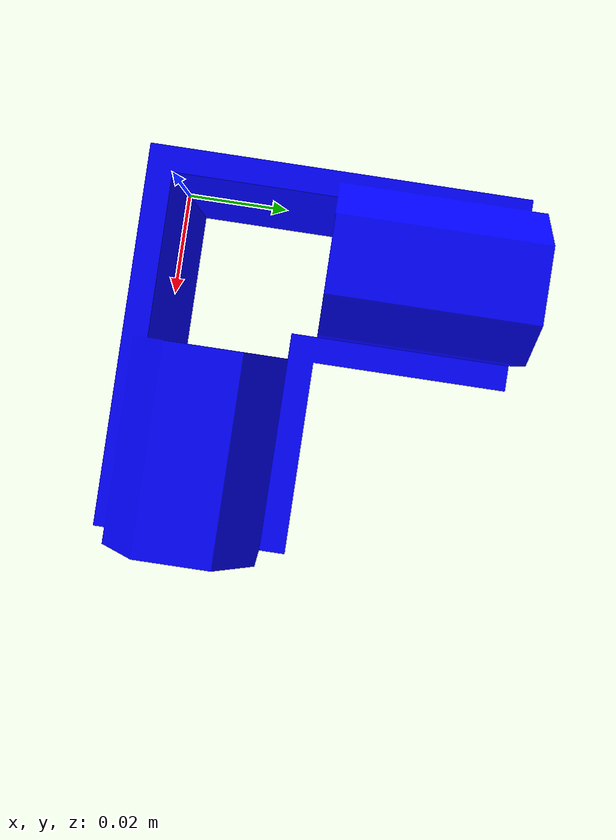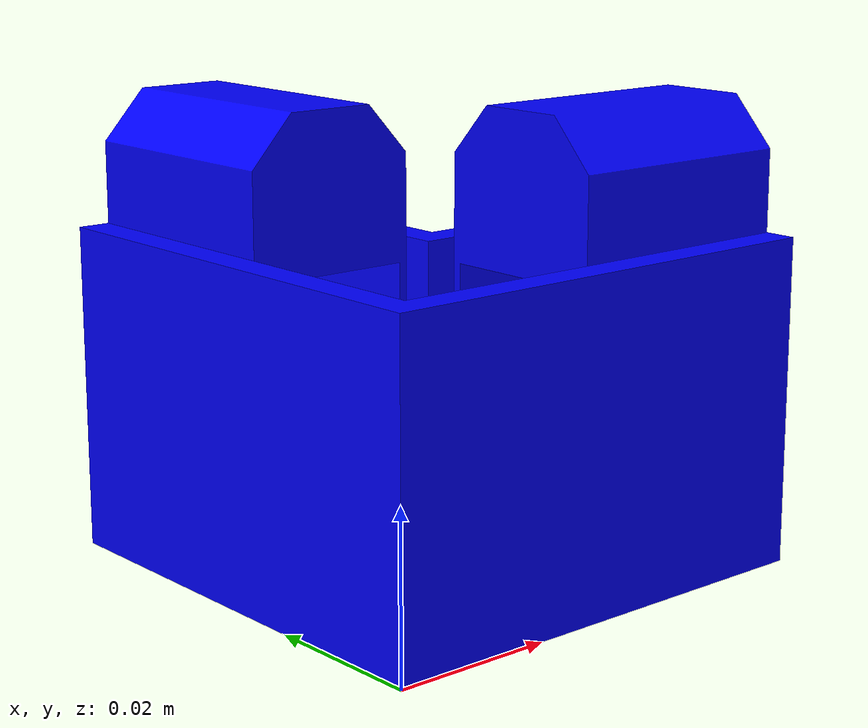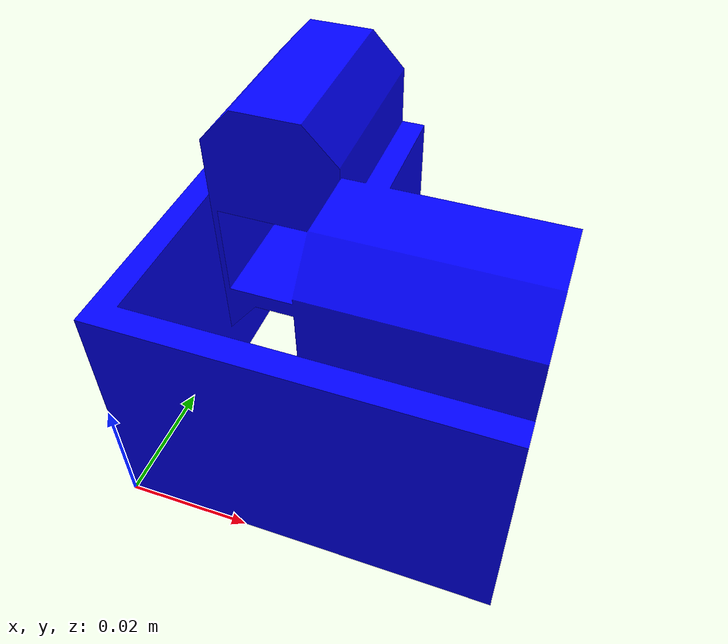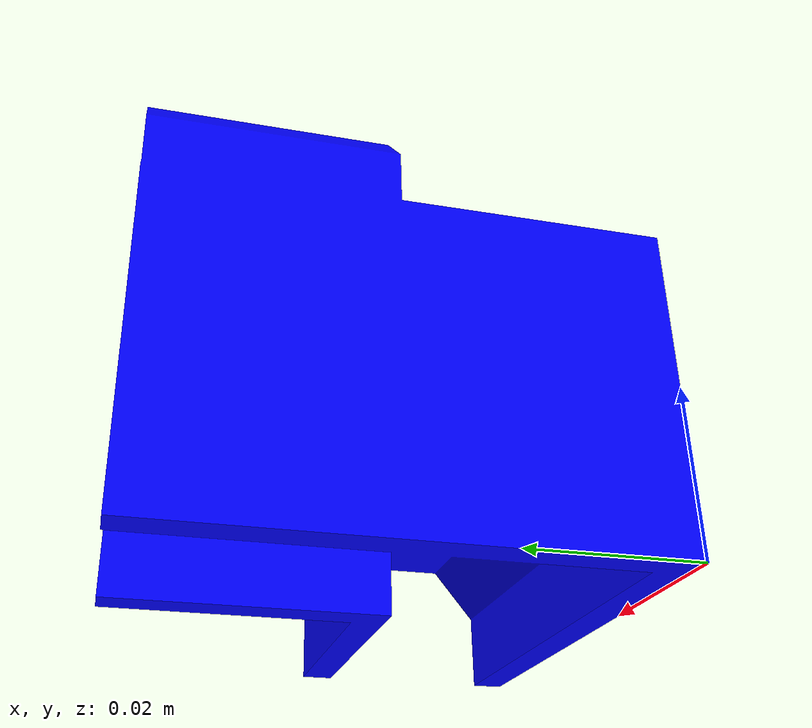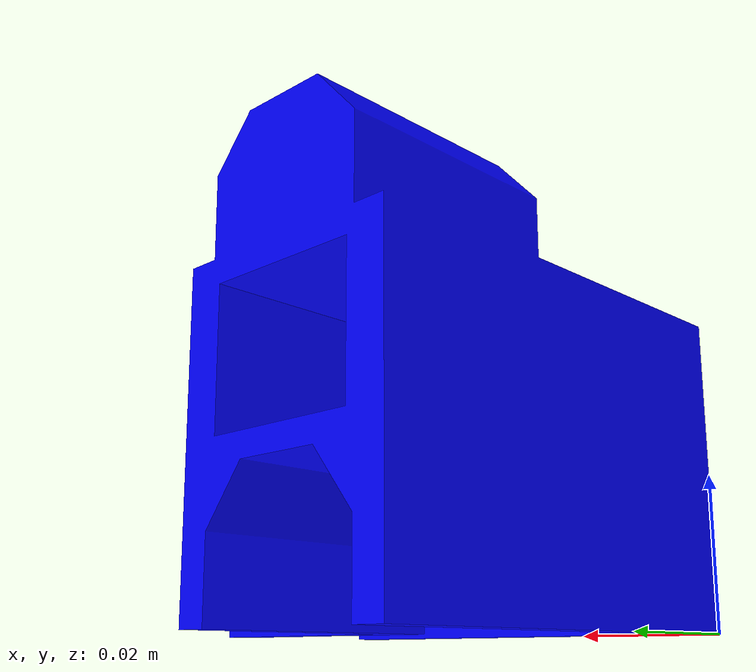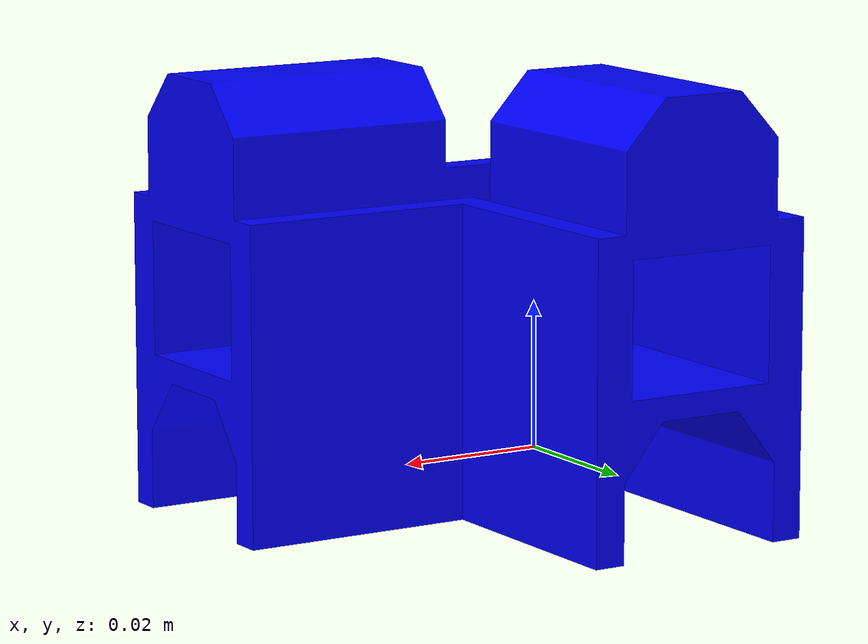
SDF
<?xml version="1.0" ?>
<sdf version="1.5">
  <model name='L_brick'>
    <pose>0 0 0 0 0 0</pose>
    <link name='link'>
        <inertial>
          <mass>0.15</mass>
          <pose>0.03 0.03 0.02 0 0 0</pose>
          <inertia>
            <ixx>3.0e-4</ixx>
            <iyy>3.0e-4</iyy>
            <izz>5.0e-4</izz>
            <ixy>0</ixy>
            <ixz>0</ixz>
            <iyz>0</iyz>
          </inertia>
        </inertial>

      <visual name='L_brick_visual'>
        <pose>0 0 0 0 0 0</pose>
        <geometry>
          <mesh>
            <uri>model://L_brick/L_brick.STL</uri>
            <scale>0.001 0.001 0.001</scale>
          </mesh>
        </geometry>
        <material><ambient>0 0 1 1</ambient><diffuse>0 0 1 1</diffuse></material>
      </visual>

      <collision name='wall_left'>
        <pose>0.002 0.03 0.02 0 0 0</pose>
        <geometry><box><size>0.004 0.06 0.04</size></box></geometry>
      </collision>

      <collision name='wall_bottom'>
        <pose>0.03 0.002 0.02 0 0 0</pose>
        <geometry><box><size>0.06 0.004 0.04</size></box></geometry>
      </collision>

      <collision name='wall_inner_vert'>
        <pose>0.028 0.045 0.02 0 0 0</pose>
        <geometry><box><size>0.004 0.03 0.04</size></box></geometry>
      </collision>
      <collision name='wall_inner_horiz'>
        <pose>0.045 0.028 0.02 0 0 0</pose>
        <geometry><box><size>0.03 0.004 0.04</size></box></geometry>
      </collision>

      <collision name='roof_y'>
        <pose>0.015 0.045 0.039 0 0 0</pose>
        <geometry><box><size>0.03 0.03 0.002</size></box></geometry>
      </collision>
      <collision name='roof_x'>
        <pose>0.045 0.015 0.039 0 0 0</pose>
        <geometry><box><size>0.03 0.03 0.002</size></box></geometry>
      </collision>
      <collision name='roof_corner'>
        <pose>0.015 0.015 0.039 0 0 0</pose>
        <geometry><box><size>0.03 0.03 0.002</size></box></geometry>
      </collision>

      <collision name='stud_y'>
        <pose>0.015 0.045 0.044 0 0 0</pose>
        <geometry><box><size>0.022 0.022 0.012</size></box></geometry>
      </collision>

      <collision name='stud_x'>
        <pose>0.045 0.015 0.044 0 0 0</pose>
        <geometry><box><size>0.022 0.022 0.012</size></box></geometry>
      </collision>

      <collision name="grasp_proxy">
          <pose>0.03 0.03 0.02 0 0 0</pose>
          <geometry>
            <box>
              <size>0.06 0.06 0.04</size>
            </box>
          </geometry>
          <surface>
            <friction>
              <ode>
                <mu>1.5</mu>
                <mu2>1.5</mu2>
              </ode>
            </friction>
            <contact>
              <ode>
                <kp>1e6</kp>
                <kd>1.0</kd>
              </ode>
            </contact>
          </surface>
        </collision>

    </link>
  </model>
</sdf>
